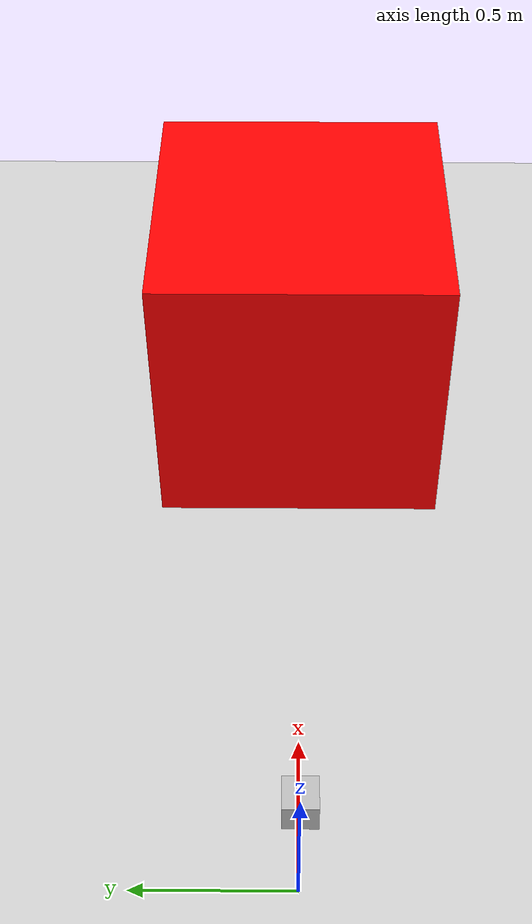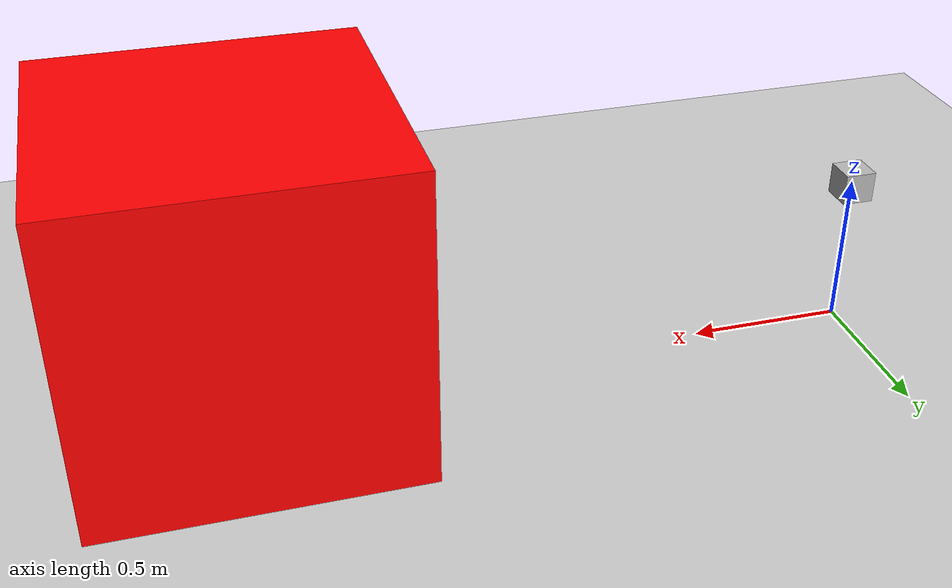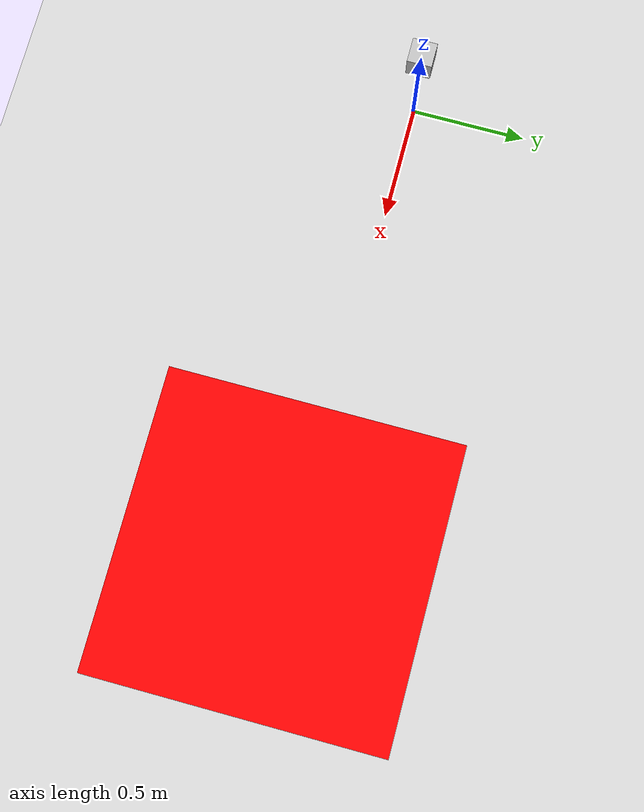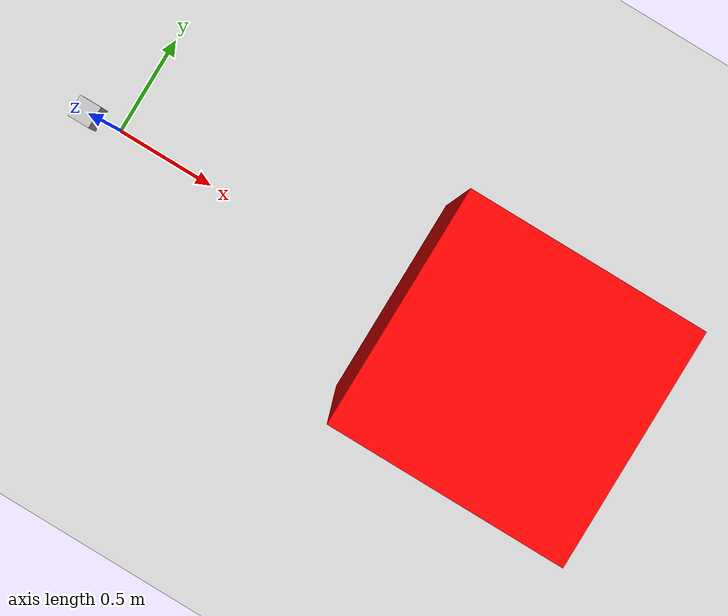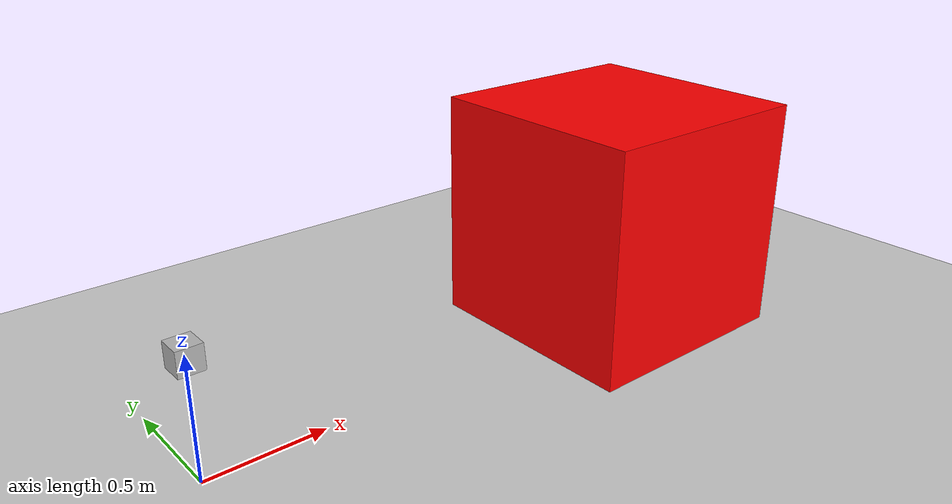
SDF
<?xml version="1.0" ?>
<sdf version="1.8">
    <world name="camera_world">

        <!-- This one makes the cube fall -->
        <plugin
            filename="gz-sim-physics-system"
            name="gz::sim::systems::Physics">
        </plugin>

        <plugin
            filename="gz-sim-user-commands-system"
            name="gz::sim::systems::UserCommands">
        </plugin>

        <!-- This plugin gave me back my GUI -->
        <plugin
            filename="gz-sim-scene-broadcaster-system"
            name="gz::sim::systems::SceneBroadcaster">
        </plugin>

        <plugin
            filename="gz-sim-sensors-system"
            name="gz::sim::systems::Sensors">
            <render_engine>ogre2</render_engine>
        </plugin>

        <light type="directional" name="sun">
            <cast_shadows>true</cast_shadows>
            <pose>0 0 10 0 0 0</pose>
            <diffuse>0.8 0.8 0.8 1</diffuse>
            <specular>0.2 0.2 0.2 1</specular>
            <attenuation>
                <range>1000</range>
                <constant>0.9</constant>
                <linear>0.01</linear>
                <quadratic>0.001</quadratic>
            </attenuation>
            <direction>-0.5 0.1 -0.9</direction>
        </light>

        <model name="red_box">
            <pose>2 0 0.5 0 0 0</pose>
            <link name="link">
                <visual name="visual">
                    <geometry>
                        <box>
                            <size>1 1 1</size>
                        </box>
                    </geometry>
                    <material>
                        <ambient>1 0 0 1</ambient>
                        <diffuse>1 0 0 1</diffuse>
                    </material>
                </visual>
            </link>
        </model>

        <model name="camera_model">
            <static>true</static> <pose>0 0 0.5 0 0 0</pose> <link name="link">
                <visual name="visual">
                    <geometry>
                        <box>
                            <size>0.1 0.1 0.1</size>
                        </box>
                    </geometry>
                </visual>

                <sensor name="camera" type="camera">
                    <pose>0 0 0 0 0 0</pose>
                    <topic>camera/image</topic> <update_rate>30</update_rate>
                    <camera>
                        <horizontal_fov>1.047</horizontal_fov>
                        <image>
                            <width>640</width>
                            <height>480</height>
                        </image>
                        <clip>
                            <near>0.1</near>
                            <far>100</far>
                        </clip>
                    </camera>
                </sensor>
            </link>
        </model>

        <include>
          <uri>https://fuel.gazebosim.org/1.0/OpenRobotics/models/Ground Plane</uri>
        </include>
    </world>
</sdf>
